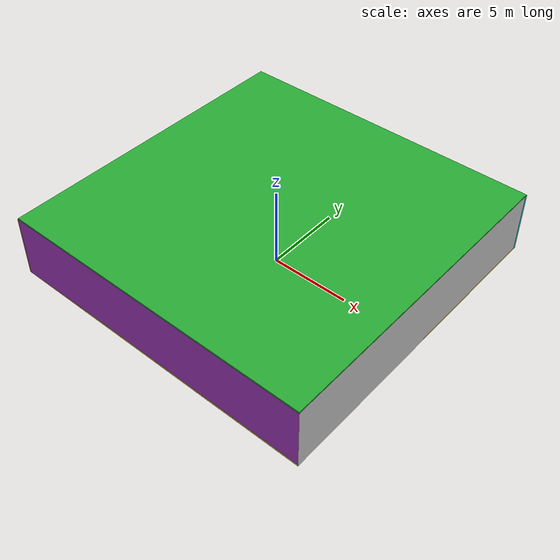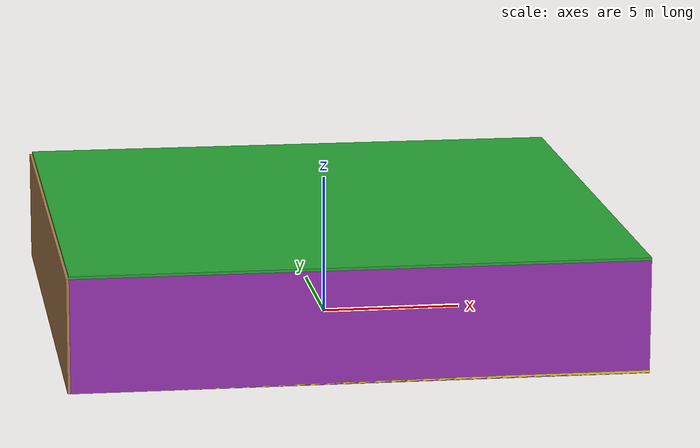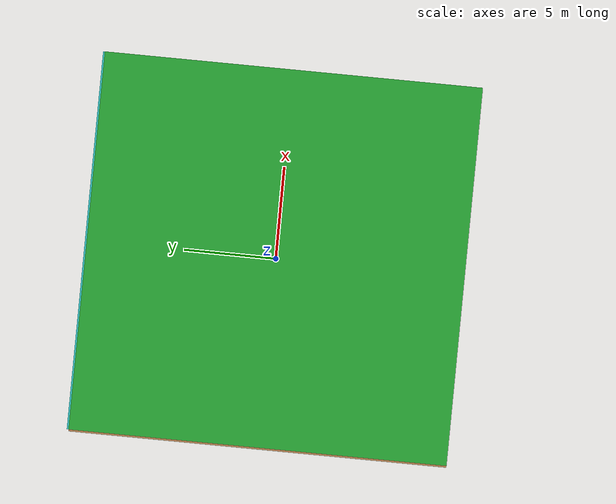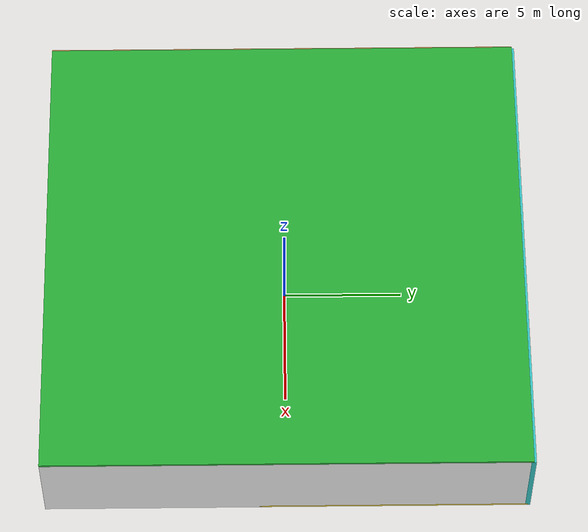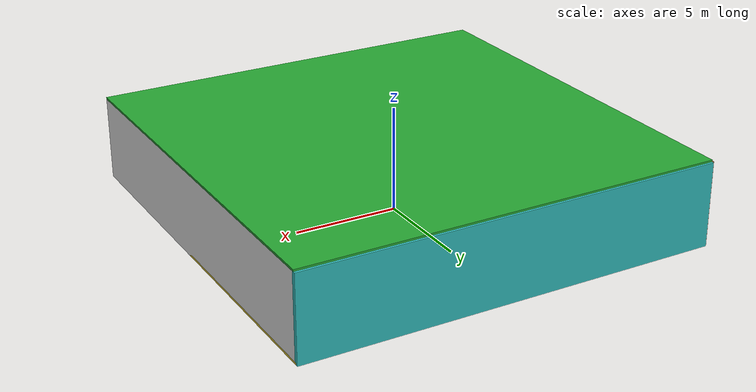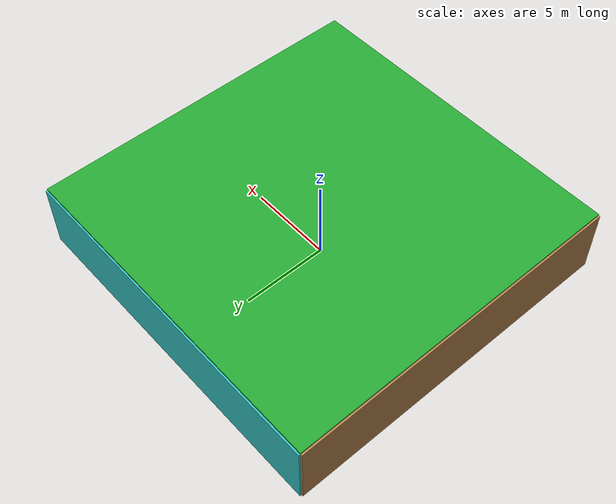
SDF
<sdf version="1.4">
 <world name="default">
  <physics type="ode">
   <max_step_size>0.001</max_step_size>
   <real_time_factor>1</real_time_factor>
   <real_time_update_rate>1000</real_time_update_rate>
   <gravity>0 0 -9.8</gravity>
  </physics>
  <scene><ambient>0.4 0.4 0.4 1</ambient><background>0.7 0.7 0.7 1</background><shadows>1</shadows></scene>
  <model name="Surrounding">
   <static>1</static>
   <link name="Ceiling">
    <collision name="Ceiling_Collision"><geometry><box><size>20 20 0.1</size></box></geometry></collision>
    <visual name="Ceiling_Visual">
     <geometry><box><size>20 20 0.1</size></box></geometry>
     <material>
      <script><uri>file://media/materials/scripts/gazebo.material</uri><name>Gazebo/GreenGlow</name></script>
     </material>
    </visual>
    <pose>0 0 4.05 0 0 0</pose>
   </link>
   <link name="Wall_South">
    <collision name="Wall_South_Collision">
     <geometry><box><size>20 0 4</size></box></geometry>
     <pose>0 0 2 0 -0 0</pose>
    </collision>
    <visual name="Wall_South_Visual">
     <pose>0 0 2 0 -0 0</pose>
     <geometry><box><size>20 0 4</size></box></geometry>
     <material>
      <script><uri>file://media/materials/scripts/gazebo.material</uri><name>Gazebo/Purple</name></script>
     </material>
    </visual>
    <velocity_decay><linear>0</linear><angular>0</angular></velocity_decay>
    <pose>0 -10 0 0 -0 0</pose>
   </link>
   <link name="Wall_East">
    <collision name="Wall_21_Collision">
     <geometry><box><size>20 0 4</size></box></geometry>
     <pose>0 0 2 0 -0 0</pose>
    </collision>
    <visual name="Wall_21_Visual">
     <pose>0 0 2 0 -0 0</pose>
     <geometry><box><size>20 0 4</size></box></geometry>
     <material>
      <script><uri>file://media/materials/scripts/gazebo.material</uri><name>Gazebo/White</name></script>
     </material>
    </visual>
    <velocity_decay><linear>0</linear><angular>0</angular></velocity_decay>
    <pose>10 0 0 0 -0 1.5708</pose>
   </link>
   <link name="Wall_North">
    <collision name="Wall_22_Collision">
     <geometry><box><size>20 0.2 4</size></box></geometry>
     <pose>0 0 2 0 -0 0</pose>
    </collision>
    <visual name="Wall_22_Visual">
     <pose>0 0 2 0 -0 0</pose>
     <geometry><box><size>20 0.2 4</size></box></geometry>
     <material>
      <script><uri>file://media/materials/scripts/gazebo.material</uri><name>Gazebo/Turquoise</name></script>
     </material>
    </visual>
    <velocity_decay><linear>0</linear><angular>0</angular></velocity_decay>
    <pose>0 10 0 0 -0 0</pose>
   </link>
   <link name="Wall_West">
    <collision name="Wall_23_Collision">
     <geometry><box><size>20 0.2 4</size></box></geometry>
     <pose>0 0 2 0 -0 0</pose>
    </collision>
    <visual name="Wall_23_Visual">
     <pose>0 0 2 0 -0 0</pose>
     <geometry><box><size>20 0.2 4</size></box></geometry>
     <material>
      <script><uri>file://media/materials/scripts/gazebo.material</uri><name>Gazebo/WoodFloor</name></script>
     </material>
    </visual>
    <velocity_decay><linear>0</linear><angular>0</angular></velocity_decay>
    <pose>-10 0 0 0 0 -1.5708</pose>
   </link>
   <link name="Ground_link">
    <collision name="collision">
     <pose>0 0 .05 0 -0 0</pose>
     <geometry><box><size>20 20 0.1</size></box></geometry>
    </collision>
    <visual name="visual">
     <pose>0 0 .05 0 -0 0</pose>
     <geometry><box><size>20 20 0.1</size></box></geometry>
     <material>
      <script><uri>file://media/materials/scripts/gazebo.material</uri><name>Gazebo/ZincYellow</name></script>
     </material>
    </visual>
   </link>
   <static>1</static>
  </model>
  <spherical_coordinates>
   <surface_model>EARTH_WGS84</surface_model>
   <latitude_deg>0</latitude_deg>
   <longitude_deg>0</longitude_deg>
   <elevation>0</elevation>
   <heading_deg>0</heading_deg>
  </spherical_coordinates>
  <light name="lightball_0" type="diffuse">
   <diffuse>0.8 0.8 0.8 1</diffuse>
   <specular>0.2 0.2 0.2 1</specular>
   <attenuation>
    <range>100</range>
    <constant>0.7</constant>
    <linear>0.01</linear>
    <quadratic>0.001</quadratic>
   </attenuation>
   <direction>-0.5 0.1 -0.9</direction>
   <pose>-4.54015110288 -2.60319235605 1.96848712713 0 0 0</pose>
  </light>
  <light name="lightball_1" type="diffuse">
   <diffuse>0.8 0.8 0.8 1</diffuse>
   <specular>0.2 0.2 0.2 1</specular>
   <attenuation>
    <range>100</range>
    <constant>0.7</constant>
    <linear>0.01</linear>
    <quadratic>0.001</quadratic>
   </attenuation>
   <direction>-0.5 0.1 -0.9</direction>
   <pose>3.21684098314 0.888898339184 1.97918318433 0 0 0</pose>
  </light>
  <light name="lightball_2" type="diffuse">
   <diffuse>0.8 0.8 0.8 1</diffuse>
   <specular>0.2 0.2 0.2 1</specular>
   <attenuation>
    <range>100</range>
    <constant>0.7</constant>
    <linear>0.01</linear>
    <quadratic>0.001</quadratic>
   </attenuation>
   <direction>-0.5 0.1 -0.9</direction>
   <pose>0.960089246729 -9.93352486102 2.62347892894 0 0 0</pose>
  </light>
  <light name="lightball_3" type="diffuse">
   <diffuse>0.8 0.8 0.8 1</diffuse>
   <specular>0.2 0.2 0.2 1</specular>
   <attenuation>
    <range>100</range>
    <constant>0.7</constant>
    <linear>0.01</linear>
    <quadratic>0.001</quadratic>
   </attenuation>
   <direction>-0.5 0.1 -0.9</direction>
   <pose>-9.07926229859 -1.62186713612 3.67728868048 0 0 0</pose>
  </light>
  <light name="lightball_4" type="diffuse">
   <diffuse>0.8 0.8 0.8 1</diffuse>
   <specular>0.2 0.2 0.2 1</specular>
   <attenuation>
    <range>100</range>
    <constant>0.7</constant>
    <linear>0.01</linear>
    <quadratic>0.001</quadratic>
   </attenuation>
   <direction>-0.5 0.1 -0.9</direction>
   <pose>9.03035448664 3.19494714691 0.91456451834 0 0 0</pose>
  </light>
  <light name="lightball_5" type="diffuse">
   <diffuse>0.8 0.8 0.8 1</diffuse>
   <specular>0.2 0.2 0.2 1</specular>
   <attenuation>
    <range>100</range>
    <constant>0.7</constant>
    <linear>0.01</linear>
    <quadratic>0.001</quadratic>
   </attenuation>
   <direction>-0.5 0.1 -0.9</direction>
   <pose>2.94920784144 2.95651874197 3.15270932673 0 0 0</pose>
  </light>
  <light name="lightball_6" type="diffuse">
   <diffuse>0.8 0.8 0.8 1</diffuse>
   <specular>0.2 0.2 0.2 1</specular>
   <attenuation>
    <range>100</range>
    <constant>0.7</constant>
    <linear>0.01</linear>
    <quadratic>0.001</quadratic>
   </attenuation>
   <direction>-0.5 0.1 -0.9</direction>
   <pose>-6.72841995146 4.07220665974 3.81960204654 0 0 0</pose>
  </light>
  <light name="lightball_7" type="diffuse">
   <diffuse>0.8 0.8 0.8 1</diffuse>
   <specular>0.2 0.2 0.2 1</specular>
   <attenuation>
    <range>100</range>
    <constant>0.7</constant>
    <linear>0.01</linear>
    <quadratic>0.001</quadratic>
   </attenuation>
   <direction>-0.5 0.1 -0.9</direction>
   <pose>-7.54410071451 1.8996664951 3.31244104376 0 0 0</pose>
  </light>
  <include>
   <uri>model://robocup_3Dsim_goal</uri>
   <pose>-4.94719597824 -4.27458508228 0 0 0 1.11823830483</pose>
  </include>
  <include><uri>model://cabinet</uri><pose>-5.00985156621 -1.47848726501 0 0 0 2.58168844775</pose></include>
  <include><uri>model://cabinet</uri><pose>-4.45327839846 1.20557879562 0 0 0 0.439760684448</pose></include>
  <include>
   <uri>model://construction_cone</uri>
   <pose>-1.64251222922 -7.94074436065 0 0 0 2.59978164328</pose>
  </include>
  <include>
   <uri>model://textured_shapes</uri>
   <pose>4.82127197775 -0.930958138792 0 0 0 2.38497705762</pose>
  </include>
  <include><uri>model://table</uri><pose>6.80356214993 1.28750107358 0 0 0 0.855312078086</pose></include>
 </world>
</sdf>

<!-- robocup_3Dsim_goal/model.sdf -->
<sdf version="1.5">
  <model name="robocup_3d_goal">
    <static>true</static>
    <link name="left_post">
      <pose>0 1.05 0.45 0 0 0</pose>
      <collision name="collision">
        <geometry>
          <cylinder>
            <radius>0.05</radius>
            <length>0.9</length>
          </cylinder>
        </geometry>
      </collision>
      <visual name="visual">
        <geometry>
          <cylinder>
            <radius>0.05</radius>
            <length>0.9</length>
          </cylinder>
        </geometry>
        <material>
          <script>
            <uri>file://media/materials/scripts/gazebo.material</uri>
            <name>Gazebo/ZincYellow</name>
          </script>
        </material>
      </visual>
    </link>
    <link name="left_support_horiz_lower">
      <pose>0.30 1.05 0.01 0 0 0</pose>
      <collision name="collision">
        <geometry>
          <box>
            <size>0.50 0.02 0.02</size>
          </box>
        </geometry>
      </collision>
      <visual name="visual">
        <geometry>
          <box>
            <size>0.50 0.02 0.02</size>
          </box>
        </geometry>
        <material>
          <script>
            <uri>file://media/materials/scripts/gazebo.material</uri>
            <name>Gazebo/White</name>
          </script>
        </material>
      </visual>
    </link>
    <link name="left_support_horiz_upper">
      <pose>0.30 1.05 0.79 0 0 0</pose>
      <collision name="collision">
        <geometry>
          <box>
            <size>0.50 0.02 0.02</size>
          </box>
        </geometry>
      </collision>
      <visual name="visual">
        <geometry>
          <box>
            <size>0.50 0.02 0.02</size>
          </box>
        </geometry>
        <material>
          <script>
            <uri>file://media/materials/scripts/gazebo.material</uri>
            <name>Gazebo/White</name>
          </script>
        </material>
      </visual>
    </link>
    <link name="left_support_vertical">
      <pose>0.56 1.05 0.4 0 1.5708 0</pose>
      <collision name="collision">
        <geometry>
          <box>
            <size>0.80 0.02 0.02</size>
          </box>
        </geometry>
      </collision>
      <visual name="visual">
        <geometry>
          <box>
            <size>0.80 0.02 0.02</size>
          </box>
        </geometry>
        <material>
          <script>
            <uri>file://media/materials/scripts/gazebo.material</uri>
            <name>Gazebo/White</name>
          </script>
        </material>
      </visual>
    </link>
    <link name="right_support_horiz_lower">
      <pose>0.30 -1.05 0.01 0 0 0</pose>
      <collision name="collision">
        <geometry>
          <box>
            <size>0.50 0.02 0.02</size>
          </box>
        </geometry>
      </collision>
      <visual name="visual">
        <geometry>
          <box>
            <size>0.50 0.02 0.02</size>
          </box>
        </geometry>
        <material>
          <script>
            <uri>file://media/materials/scripts/gazebo.material</uri>
            <name>Gazebo/White</name>
          </script>
        </material>
      </visual>
    </link>
    <link name="right_support_horiz_upper">
      <pose>0.30 -1.05 0.79 0 0 0</pose>
      <collision name="collision">
        <geometry>
          <box>
            <size>0.50 0.02 0.02</size>
          </box>
        </geometry>
      </collision>
      <visual name="visual">
        <geometry>
          <box>
            <size>0.50 0.02 0.02</size>
          </box>
        </geometry>
        <material>
          <script>
            <uri>file://media/materials/scripts/gazebo.material</uri>
            <name>Gazebo/White</name>
          </script>
        </material>
      </visual>
    </link>
    <link name="right_support_vertical">
      <pose>0.56 -1.05 0.4 0 1.5708 0</pose>
      <collision name="collision">
        <geometry>
          <box>
            <size>0.80 0.02 0.02</size>
          </box>
        </geometry>
      </collision>
      <visual name="visual">
        <geometry>
          <box>
            <size>0.80 0.02 0.02</size>
          </box>
        </geometry>
        <material>
          <script>
            <uri>file://media/materials/scripts/gazebo.material</uri>
            <name>Gazebo/White</name>
          </script>
        </material>
      </visual>
    </link>
    <link name="center_support_horiz_lower">
      <pose>0.56 0 0.01 0 1.5708 0</pose>
      <collision name="collision">
        <geometry>
          <box>
            <size>0.02 2.08 0.02</size>
          </box>
        </geometry>
      </collision>
      <visual name="visual">
        <geometry>
          <box>
            <size>0.02 2.08 0.02</size>
          </box>
        </geometry>
        <material>
          <script>
            <uri>file://media/materials/scripts/gazebo.material</uri>
            <name>Gazebo/White</name>
          </script>
        </material>
      </visual>
    </link>
    <link name="center_support_horiz_upper">
      <pose>0.56 0 0.79 0 1.5708 0</pose>
      <collision name="collision">
        <geometry>
          <box>
            <size>0.02 2.08 0.02</size>
          </box>
        </geometry>
      </collision>
      <visual name="visual">
        <geometry>
          <box>
            <size>0.02 2.08 0.02</size>
          </box>
        </geometry>
        <material>
          <script>
            <uri>file://media/materials/scripts/gazebo.material</uri>
            <name>Gazebo/White</name>
          </script>
        </material>
      </visual>
    </link>
    <link name="right_post">
      <pose>0 -1.05 0.45 0 0 0</pose>
      <collision name="collision">
        <geometry>
          <cylinder>
            <radius>0.05</radius>
            <length>0.9</length>
          </cylinder>
        </geometry>
      </collision>
      <visual name="visual">
        <geometry>
          <cylinder>
            <radius>0.05</radius>
            <length>0.9</length>
          </cylinder>
        </geometry>
        <material>
          <script>
            <uri>file://media/materials/scripts/gazebo.material</uri>
            <name>Gazebo/ZincYellow</name>
          </script>
        </material>
      </visual>
    </link>
    <link name="crossbar">
      <pose>0 0 0.85 1.57 1.57 0</pose>
      <collision name="collision">
        <geometry>
          <cylinder>
            <radius>0.05</radius>
            <length>2.0</length>
          </cylinder>
        </geometry>
      </collision>
      <visual name="visual">
        <geometry>
          <cylinder>
            <radius>0.05</radius>
            <length>2.0</length>
          </cylinder>
        </geometry>
        <material>
          <script>
            <uri>file://media/materials/scripts/gazebo.material</uri>
            <name>Gazebo/ZincYellow</name>
          </script>
        </material>
      </visual>
    </link>
    <link name="center_net">
      <pose>0.56 0 0.40 0 0 0</pose>
      <collision name="collision">
        <geometry>
          <box>
            <size>0.01 2.1 0.80</size>
          </box>
        </geometry>
      </collision>
      <visual name="visual">
        <geometry>
          <box>
            <size>0.01 2.1 0.80</size>
          </box>
        </geometry>
        <material>
          <script>
            <uri>model://../model_source/models/robocup09_spl_field/materials/scripts/</uri>
            <uri>model://../model_source/models/robocup09_spl_field/materials/textures/</uri>
            <name>RoboCup/Net</name>
          </script>
        </material>
      </visual>
    </link>
    <link name="left_net">
      <pose>0.30 1.05 0.40 0 0 0</pose>
      <collision name="collision">
        <geometry>
          <box>
            <size>0.50 0.01 0.76</size>
          </box>
        </geometry>
      </collision>
      <visual name="visual">
        <geometry>
          <box>
            <size>0.50 0.01 0.76</size>
          </box>
        </geometry>
        <material>
          <script>
            <uri>model://../model_source/models/robocup09_spl_field/materials/scripts/</uri>
            <uri>model://../model_source/models/robocup09_spl_field/materials/textures/</uri>
            <name>RoboCup/Net</name>
          </script>
        </material>
      </visual>
    </link>
    <link name="right_net">
      <pose>0.30 -1.05 0.40 0 0 0</pose>
      <collision name="collision">
        <geometry>
          <box>
            <size>0.50 0.01 0.76</size>
          </box>
        </geometry>
      </collision>
      <visual name="visual">
        <geometry>
          <box>
            <size>0.50 0.01 0.76</size>
          </box>
        </geometry>
        <material>
          <script>
            <uri>model://../model_source/models/robocup09_spl_field/materials/scripts/</uri>
            <uri>model://../model_source/models/robocup09_spl_field/materials/textures/</uri>
            <name>RoboCup/Net</name>
          </script>
        </material>
      </visual>
    </link>
  </model>
</sdf>

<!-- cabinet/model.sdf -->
<sdf version="1.5">
  <model name="cabinet">
    <static>true</static>
    <link name="cabinet_bottom_plate">
      <inertial>
        <pose>0 0 -1 0 0 0</pose>
        <inertia>
          <ixx>2.050000</ixx>
          <ixy>0</ixy>
          <ixz>0</ixz>
          <iyy>2.050000</iyy>
          <iyz>0</iyz>
          <izz>2.050000</izz>
        </inertia>
        <mass>25.000000</mass>
      </inertial>
      <collision name="cabinet_bottom_plate_geom">
        <pose>0 0 0.010000 0 0 0</pose>
        <geometry>
          <box>
            <size>0.450000 0.450000 0.020000</size>
          </box>
        </geometry>
      </collision>
      <visual name="cabinet_bottom_plate_geom_visual">
        <pose>0 0 0.010000 0 0 0</pose>
        <geometry>
          <box>
            <size>0.450000 0.450000 0.020000</size>
          </box>
        </geometry>
        <material>
          <script>
            <uri>model://media/materials/scripts/gazebo.material</uri>
            <name>Gazebo/Wood</name>
          </script>
        </material>
      </visual>
      <collision name="cabinet_bottom_plate_geom_cabinet_back_plate">
        <pose>0.235000 0 0.510000 0 0 0</pose>
        <geometry>
          <box>
            <size>0.020000 0.450000 1.020000</size>
          </box>
        </geometry>
      </collision>
      <visual name="cabinet_bottom_plate_geom_cabinet_back_plate_visual">
        <pose>0.235000 0 0.510000 0 0 0</pose>
        <geometry>
          <box>
            <size>0.020000 0.450000 1.020000</size>
          </box>
        </geometry>
        <material>
          <script>
            <uri>model://media/materials/scripts/gazebo.material</uri>
            <name>Gazebo/Wood</name>
          </script>
        </material>
      </visual>
      <collision name="cabinet_bottom_plate_geom_cabinet_left_plate">
        <pose>0 0.235000 0.510000 0 0 0</pose>
        <geometry>
          <box>
            <size>0.450000 0.020000 1.020000</size>
          </box>
        </geometry>
      </collision>
      <visual name="cabinet_bottom_plate_geom_cabinet_left_plate_visual">
        <pose>0 0.235000 0.510000 0 0 0</pose>
        <geometry>
          <box>
            <size>0.450000 0.020000 1.020000</size>
          </box>
        </geometry>
        <material>
          <script>
            <uri>model://media/materials/scripts/gazebo.material</uri>
            <name>Gazebo/Wood</name>
          </script>
        </material>
      </visual>
      <collision name="cabinet_bottom_plate_geom_cabinet_middle_plate">
        <pose>0 0 0.510000 0 0 0</pose>
        <geometry>
          <box>
            <size>0.450000 0.450000 0.020000</size>
          </box>
        </geometry>
      </collision>
      <visual name="cabinet_bottom_plate_geom_cabinet_middle_plate_visual">
        <pose>0 0 0.510000 0 0 0</pose>
        <geometry>
          <box>
            <size>0.450000 0.450000 0.020000</size>
          </box>
        </geometry>
        <material>
          <script>
            <uri>model://media/materials/scripts/gazebo.material</uri>
            <name>Gazebo/Wood</name>
          </script>
        </material>
      </visual>
      <collision name="cabinet_bottom_plate_geom_cabinet_right_plate">
        <pose>0 -0.235000 0.510000 0 0 0</pose>
        <geometry>
          <box>
            <size>0.450000 0.020000 1.020000</size>
          </box>
        </geometry>
      </collision>
      <visual name="cabinet_bottom_plate_geom_cabinet_right_plate_visual">
        <pose>0 -0.235000 0.510000 0 0 0</pose>
        <geometry>
          <box>
            <size>0.450000 0.020000 1.020000</size>
          </box>
        </geometry>
        <material>
          <script>
            <uri>model://media/materials/scripts/gazebo.material</uri>
            <name>Gazebo/Wood</name>
          </script>
        </material>
      </visual>
      <collision name="cabinet_bottom_plate_geom_cabinet_top_plate">
        <pose>0 0 1.010000 0 0 0</pose>
        <geometry>
          <box>
            <size>0.450000 0.450000 0.020000</size>
          </box>
        </geometry>
      </collision>
      <visual name="cabinet_bottom_plate_geom_cabinet_top_plate_visual">
        <pose>0 0 1.010000 0 0 0</pose>
        <geometry>
          <box>
            <size>0.450000 0.450000 0.020000</size>
          </box>
        </geometry>
        <material>
          <script>
            <uri>model://media/materials/scripts/gazebo.material</uri>
            <name>Gazebo/Wood</name>
          </script>
        </material>
      </visual>
    </link>
  </model>
</sdf>

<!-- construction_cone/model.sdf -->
<sdf version="1.5">
  <model name="Construction Cone">
    <link name="link">
      <collision name="collision">
        <geometry>
          <mesh>
            <scale>10 10 10</scale>
            <uri>file://isr-testbed/construction_cone/meshes/construction_cone.dae</uri>
          </mesh>
        </geometry>
      </collision>
      <visual name="visual">
        <geometry>
          <mesh>
            <scale>10 10 10</scale>
            <uri>file://isr-testbed/construction_cone/meshes/construction_cone.dae</uri>
          </mesh>
        </geometry>
      </visual>
    </link>
  </model>
</sdf>

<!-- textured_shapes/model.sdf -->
<sdf version="1.6">
  <model name="textured_shapes">
    <pose>0 0 0.5 0 0 0</pose>
    <link name="box">
      <pose>0 -1.5 0 0 0 0</pose>
      <collision name="collision">
        <geometry>
          <box>
            <size>1 1 1</size>
          </box>
        </geometry>
      </collision>
      <visual name="visual">
        <geometry>
          <box>
            <size>1 1 1</size>
          </box>
        </geometry>
        <material>
          <script>
            <uri>model://../model_source/models/textured_shapes/materials/scripts</uri>
            <uri>model://../model_source/models/textured_shapes/materials/textures</uri>
            <name>TexturedShape/Squares</name>
          </script>
        </material>
      </visual>
    </link>
    <link name="sphere">
      <collision name="collision">
        <geometry>
          <sphere>
            <radius>0.5</radius>
          </sphere>
        </geometry>
      </collision>
      <visual name="visual">
        <geometry>
          <sphere>
            <radius>0.5</radius>
          </sphere>
        </geometry>
        <material>
          <script>
            <uri>model://../model_source/models/textured_shapes/materials/scripts</uri>
            <uri>model://../model_source/models/textured_shapes/materials/textures</uri>
            <name>TexturedShape/Squares</name>
          </script>
        </material>
      </visual>
    </link>
    <link name="cylinder">
      <pose>0 1.5 0 0 0 0</pose>
      <collision name="collision">
        <geometry>
          <cylinder>
            <radius>0.5</radius>
            <length>1</length>
          </cylinder>
        </geometry>
      </collision>
      <visual name="visual">
        <geometry>
          <cylinder>
            <radius>0.5</radius>
            <length>1</length>
          </cylinder>
        </geometry>
        <material>
          <script>
            <uri>model://../model_source/models/textured_shapes/materials/scripts</uri>
            <uri>model://../model_source/models/textured_shapes/materials/textures</uri>
            <name>TexturedShape/Squares</name>
          </script>
        </material>
      </visual>
    </link>
  </model>
</sdf>

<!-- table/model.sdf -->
<sdf version="1.5">
  <model name="table">
    <static>true</static>
    <link name="link">
      <collision name="surface">
        <pose>0 0 1.0 0 0 0</pose>
        <geometry>
          <box>
            <size>1.5 0.8 0.03</size>
          </box>
        </geometry>
        <surface>
          <friction>
            <ode>
              <mu>0.6</mu>
              <mu2>0.6</mu2>
            </ode>
          </friction>
        </surface>
      </collision>
      <visual name="visual1">
        <pose>0 0 1.0 0 0 0</pose>
        <geometry>
          <box>
            <size>1.5 0.8 0.03</size>
          </box>
        </geometry>
        <material>
          <script>
            <uri>model://media/materials/scripts/gazebo.material</uri>
            <name>Gazebo/Wood</name>
          </script>
        </material>
      </visual>
      <collision name="front_left_leg">
        <pose>0.68 0.38 0.5 0 0 0</pose>
        <geometry>
          <cylinder>
            <radius>0.02</radius>
            <length>1.0</length>
          </cylinder>
        </geometry>
      </collision>
      <visual name="front_left_leg">
        <pose>0.68 0.38 0.5 0 0 0</pose>
        <geometry>
          <cylinder>
            <radius>0.02</radius>
            <length>1.0</length>
          </cylinder>
        </geometry>
        <material>
          <script>
            <uri>model://media/materials/scripts/gazebo.material</uri>
            <name>Gazebo/Grey</name>
          </script>
        </material>
      </visual>
      <collision name="front_right_leg">
        <pose>0.68 -0.38 0.5 0 0 0</pose>
        <geometry>
          <cylinder>
            <radius>0.02</radius>
            <length>1.0</length>
          </cylinder>
        </geometry>
      </collision>
      <visual name="front_right_leg">
        <pose>0.68 -0.38 0.5 0 0 0</pose>
        <geometry>
          <cylinder>
            <radius>0.02</radius>
            <length>1.0</length>
          </cylinder>
        </geometry>
        <material>
          <script>
            <uri>model://media/materials/scripts/gazebo.material</uri>
            <name>Gazebo/Grey</name>
          </script>
        </material>
      </visual>
      <collision name="back_right_leg">
        <pose>-0.68 -0.38 0.5 0 0 0</pose>
        <geometry>
          <cylinder>
            <radius>0.02</radius>
            <length>1.0</length>
          </cylinder>
        </geometry>
      </collision>
      <visual name="back_right_leg">
        <pose>-0.68 -0.38 0.5 0 0 0</pose>
        <geometry>
          <cylinder>
            <radius>0.02</radius>
            <length>1.0</length>
          </cylinder>
        </geometry>
        <material>
          <script>
            <uri>model://media/materials/scripts/gazebo.material</uri>
            <name>Gazebo/Grey</name>
          </script>
        </material>
      </visual>
      <collision name="back_left_leg">
        <pose>-0.68 0.38 0.5 0 0 0</pose>
        <geometry>
          <cylinder>
            <radius>0.02</radius>
            <length>1.0</length>
          </cylinder>
        </geometry>
      </collision>
      <visual name="back_left_leg">
        <pose>-0.68 0.38 0.5 0 0 0</pose>
        <geometry>
          <cylinder>
            <radius>0.02</radius>
            <length>1.0</length>
          </cylinder>
        </geometry>
        <material>
          <script>
            <uri>model://media/materials/scripts/gazebo.material</uri>
            <name>Gazebo/Grey</name>
          </script>
        </material>
      </visual>
    </link>
  </model>
</sdf>
